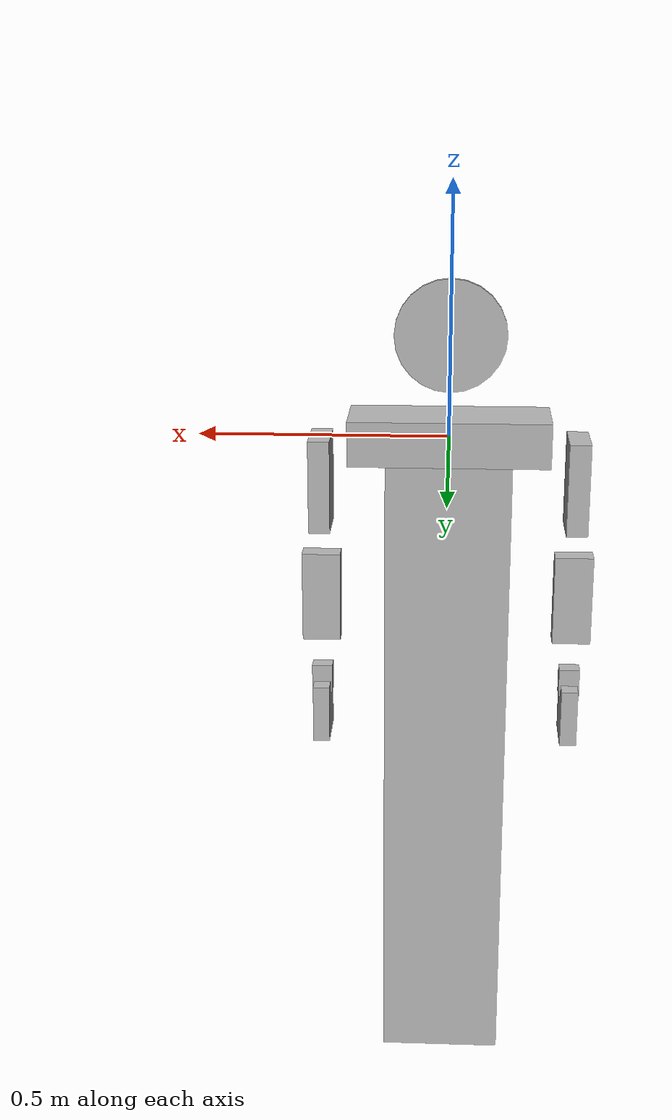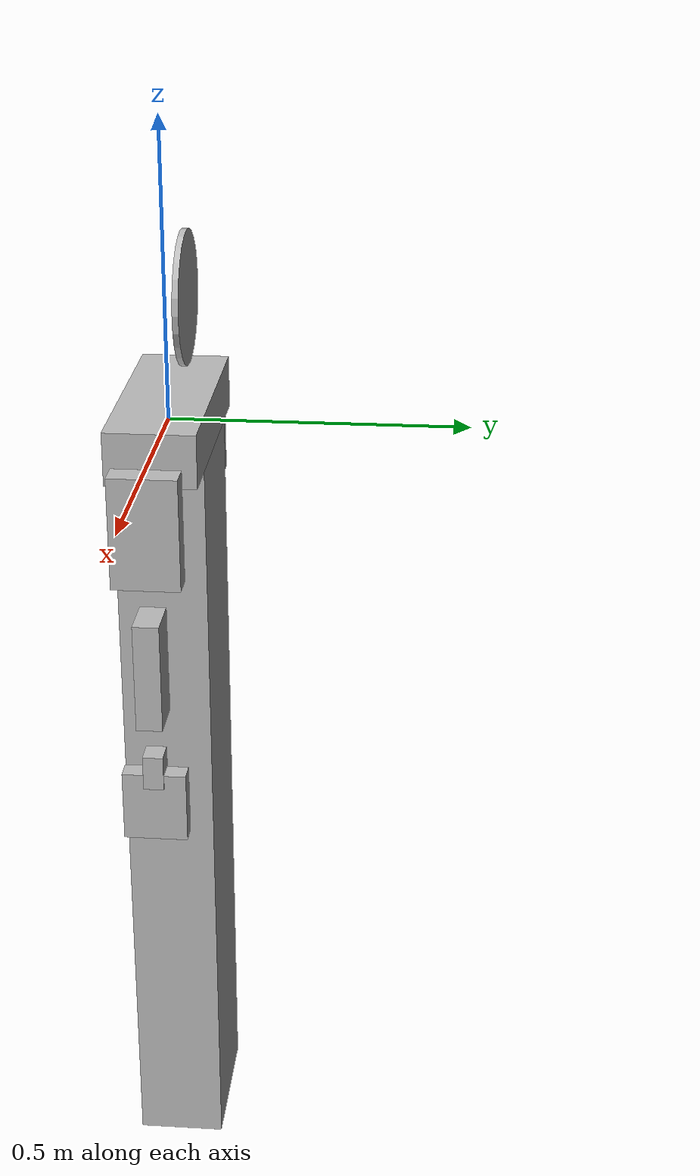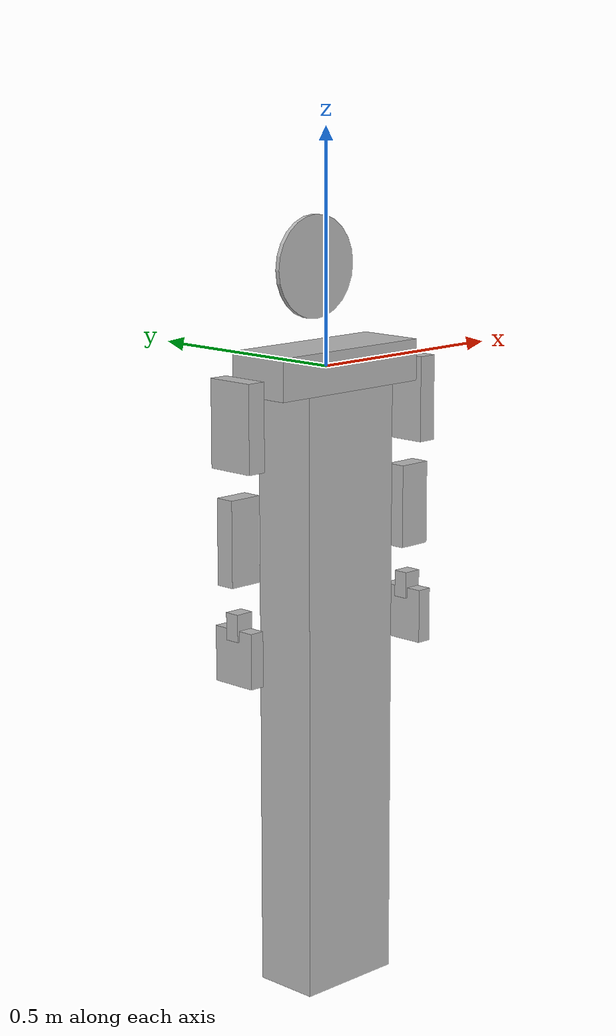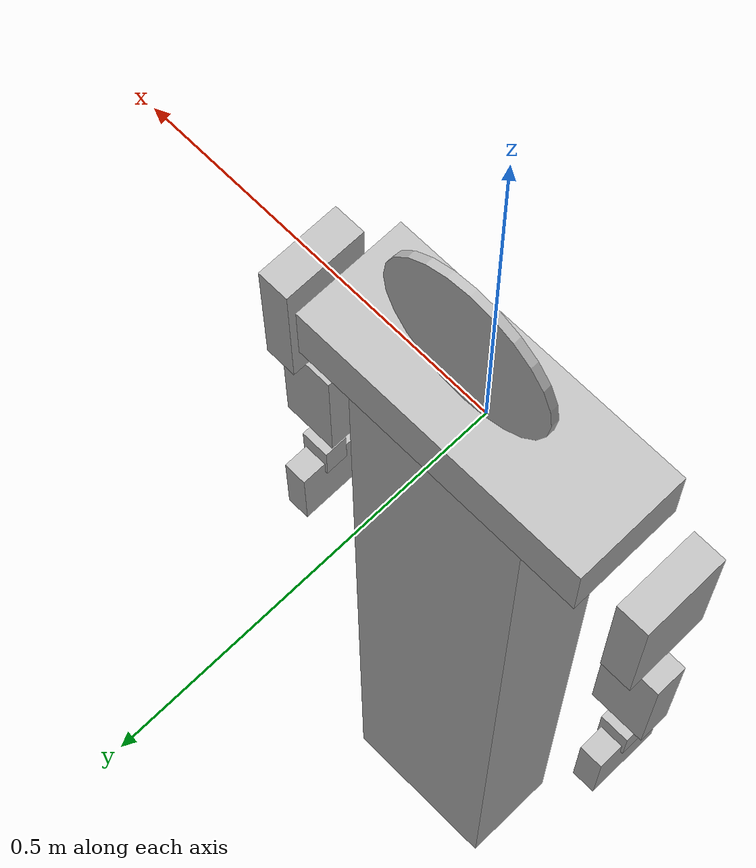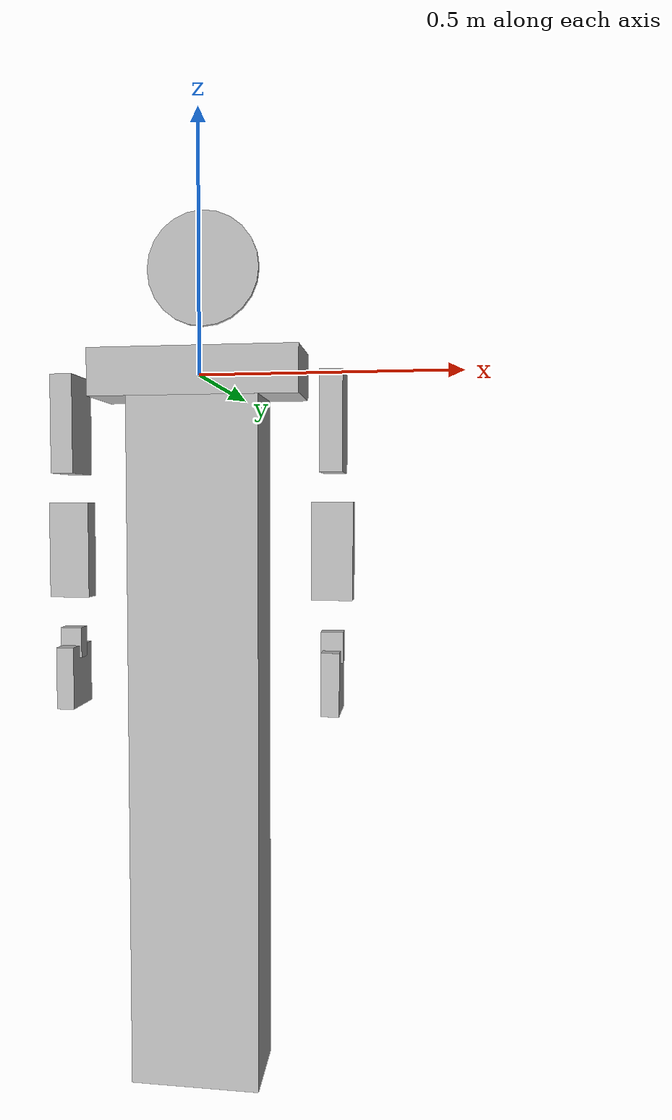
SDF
<?xml version="1.0"?>
<sdf version="1.5">
	<model name="aslr">
		<static>false</static>
		<plugin name="AslrRepl" filename="librepl_control.so" />

		<!-- links will collide with each other, though joined links won't -->
		<self_collide>true</self_collide>
		<pose>0 0 0 0 0 0</pose><!-- gazebo treats +Z as up -->

		<!-- fix base by joining it to 'world' -->
		<joint name="j_base" type="fixed"><parent>world</parent><child>l_base</child></joint>
		<link name="l_base">
			<pose>0 0 0 0 0 0</pose><gravity>false</gravity>
			<visual name="v_torso"><pose>0 0 -0.7083 0 0 0</pose>
				<geometry><box><size>0.25 0.15 1.3266</size></box></geometry>
			</visual>
			<collision name="c_torso"><pose>0 0 -0.7083 0 0 0</pose>
				<geometry><box><size>0.25 0.15 1.3266</size></box></geometry>
			</collision>
			<visual name="v_collar"><pose>0 0 0 0 0 0</pose>
				<geometry><box><size>0.40 0.15 0.09</size></box></geometry>
			</visual>
			<collision name="c_collar"><pose>0 0 0 0 0 0</pose>
				<geometry><box><size>0.40 0.15 0.09</size></box></geometry>
			</collision>
		</link>

		<joint name="j_neck" type="fixed"><parent>l_base</parent><child>l_head</child></joint>
		<link name="l_head">
			<pose>0 0.033315 0.2073 0 0 0</pose>
			<visual name="v_head"><pose>0 0 0 1.5707 0 0</pose>
				<geometry><cylinder><radius>0.11</radius><length>0.01</length></cylinder></geometry>
			</visual>
			<collision name="c_head"><pose>0 0 0 1.5707 0 0</pose>
				<geometry><cylinder><radius>0.11</radius><length>0.01</length></cylinder></geometry>
			</collision>
		</link>

		<joint name="j_Rshoulder_pitch" type="revolute">
			<parent>l_base</parent><child>l_Rshoulder</child>
			<axis><xyz>1 0 0</xyz><limit><!-- shoulder pitch -->
				<upper>2.3561944901923449288469825374596</upper>
				<lower>-0.78539816339744830961566084581988</lower>
				<effort>8.4</effort><!-- not geared - gears removed from design -->
			</limit></axis>
		</joint>
		<link name="l_Rshoulder">
			<pose>0.25717 0 0 0 0 0</pose>
			<inertial><mass>0.9043362</mass><pose>-0.019871708 0 0 0 0 0</pose></inertial>
		</link>
		<joint name="j_Rshoulder_roll" type="revolute">
			<parent>l_Rshoulder</parent><child>l_Rarm_upper</child>
			<axis><xyz>0 -1 0</xyz><limit><!-- shoulder roll -->
				<upper>2.6179938779914943653855361527329</upper>
				<lower>0</lower>
				<effort>16.8</effort>
			</limit></axis>
		</joint>

		<joint name="j_Lshoulder_pitch" type="revolute">
			<parent>l_base</parent><child>l_Lshoulder</child>
			<axis><xyz>1 0 0</xyz><limit><!-- shoulder pitch -->
				<upper>2.3561944901923449288469825374596</upper>
				<lower>-0.78539816339744830961566084581988</lower>
				<effort>8.4</effort><!-- not geared - gears removed from design -->
			</limit></axis>
		</joint>
		<link name="l_Lshoulder">
			<pose>-0.25717 0 0 0 0 0</pose>
			<inertial><mass>0.9043362</mass><pose>0.019871708 0 0 0 0 0</pose></inertial>
		</link>
		<joint name="j_Lshoulder_roll" type="revolute">
			<parent>l_Lshoulder</parent><child>l_Larm_upper</child>
			<axis><xyz>0 -1 0</xyz><limit><!-- shoulder roll -->
				<upper>0</upper>
				<lower>-2.6179938779914943653855361527329</lower>
				<effort>16.8</effort>
			</limit></axis>
		</joint>

		<link name="l_Rarm_upper">
			<pose>0.25717 0 0 0 0 0</pose>
			<inertial><mass>0.5236821</mass><pose>-0.0027099295 0 -0.1464027876 0 0 0</pose></inertial>
			<visual name="v_arm"><pose>0 0 -0.09401 0 0 0</pose>
				<geometry><box><size>0.04296 0.1125 0.18802</size></box></geometry>
			</visual>
			<collision name="c_arm"><pose>0 0 -0.09401 0 0 0</pose>
				<geometry><box><size>0.04296 0.1125 0.18802</size></box></geometry>
			</collision>
			<collision name="c_yaw"><pose>-0.00696 0 -0.178205 0 0 0</pose>
				<geometry><box><size>0.09003 0.1125 0.07963</size></box></geometry>
			</collision>
		</link>
		<link name="l_Larm_upper">
			<pose>-0.25717 0 0 0 0 0</pose>
			<inertial><mass>0.5236821</mass><pose>0.0027099295 0 -0.1464027876 0 0 0</pose></inertial>
			<visual name="v_arm"><pose>0 0 -0.09401 0 0 0</pose>
				<geometry><box><size>0.04296 0.1125 0.18802</size></box></geometry>
			</visual>
			<collision name="c_arm"><pose>0 0 -0.09401 0 0 0</pose>
				<geometry><box><size>0.04296 0.1125 0.18802</size></box></geometry>
			</collision>
			<collision name="c_yaw"><pose>0.00696 0 -0.178205 0 0 0</pose>
				<geometry><box><size>0.09003 0.1125 0.07963</size></box></geometry>
			</collision>
		</link>

		<joint name="j_Relbow" type="universal">
			<parent>l_Rarm_upper</parent><child>l_Rarm_lower</child>
			<axis><xyz>0 0 1</xyz><limit><!-- shoulder yaw -->
				<upper>2.3561944901923449288469825374596</upper>
				<lower>-0.78539816339744830961566084581988</lower>
				<effort>8.4</effort>
			</limit></axis>
			<axis2><xyz>1 0 0</xyz><limit><!-- elbow pitch -->
				<upper>2.2689280275926284500007979990352</upper>
				<lower>0</lower>
				<effort>8.4</effort>
			</limit></axis2>
		</joint>
		<joint name="j_Lelbow" type="universal">
			<parent>l_Larm_upper</parent><child>l_Larm_lower</child>
			<axis><xyz>0 0 1</xyz><limit><!-- shoulder yaw -->
				<upper>0.78539816339744830961566084581988</upper>
				<lower>-2.3561944901923449288469825374596</lower>
				<effort>8.4</effort>
			</limit></axis>
			<axis2><xyz>1 0 0</xyz><limit><!-- elbow pitch -->
				<upper>2.2689280275926284500007979990352</upper>
				<lower>0</lower>
				<effort>8.4</effort>
			</limit></axis2>
		</joint>

		<link name="l_Rarm_lower">
			<pose>0.25717 0 -0.24331 0 0 0</pose>
			<inertial><mass>0.3843216</mass><pose>0 0 -0.1524942453 0 0 0</pose></inertial>
			<visual name="v_arm"><pose>0 0 -0.092515 0 0 0</pose>
				<geometry><box><size>0.078 0.04332 0.18503</size></box></geometry>
			</visual>
			<collision name="c_arm"><pose>0 0 -0.092515 0 0 0</pose>
				<geometry><box><size>0.078 0.04332 0.18503</size></box></geometry>
			</collision>
			<collision name="c_roll"><pose>0 0.00401 -0.17852 0 0 0</pose>
				<geometry><box><size>0.078 0.08818 0.07302</size></box></geometry>
			</collision>
		</link>
		<link name="l_Larm_lower">
			<pose>-0.25717 0 -0.24331 0 0 0</pose>
			<inertial><mass>0.3843216</mass><pose>0 0 -0.1524942453 0 0 0</pose></inertial>
			<visual name="v_arm"><pose>0 0 -0.092515 0 0 0</pose>
				<geometry><box><size>0.078 0.04332 0.18503</size></box></geometry>
			</visual>
			<collision name="c_arm"><pose>0 0 -0.092515 0 0 0</pose>
				<geometry><box><size>0.078 0.04332 0.18503</size></box></geometry>
			</collision>
			<collision name="c_roll"><pose>0 0.00401 -0.17852 0 0 0</pose>
				<geometry><box><size>0.078 0.08818 0.07302</size></box></geometry>
			</collision>
		</link>

		<joint name="j_Rwrist" type="universal">
			<parent>l_Rarm_lower</parent><child>l_Rwrist_yaw</child>
			<axis><xyz>0 0 1</xyz><limit><!-- wrist roll -->
				<upper>1.5707963267948966192313216916398</upper>
				<lower>-1.5707963267948966192313216916398</lower>
				<effort>6</effort>
			</limit></axis>
			<axis2><xyz>0 -1 0</xyz><limit><!-- wrist pitch -->
				<upper>1.5707963267948966192313216916398</upper>
				<lower>-1.5707963267948966192313216916398</lower>
				<effort>2.5</effort>
			</limit></axis2>
		</joint>
		<link name="l_Rwrist_yaw">
			<pose>0.25717 0 -0.48883 0 0 0</pose>
			<inertial><mass>0.0312228</mass><!--CoG deemed negligible--></inertial>
			<visual name="v_wrist">
				<pose>0 0 -0.029535 0 0 0</pose>
				<geometry><box><size>0.042 0.034 0.05907</size></box></geometry>
			</visual>
			<collision name="c_wrist">
				<pose>0 0 -0.029535 0 0 0</pose>
				<geometry><box><size>0.042 0.034 0.05907</size></box></geometry>
			</collision>
		</link>
		<joint name="j_Rwrist_yaw" type="revolute">
			<parent>l_Rwrist_yaw</parent><child>l_Rhand</child>
			<axis><xyz>1 0 0</xyz><limit>
				<upper>1.5707963267948966192313216916398</upper>
				<lower>-1.5707963267948966192313216916398</lower>
				<effort>1.50042</effort>
			</limit></axis>
		</joint>

		<joint name="j_Lwrist" type="universal">
			<parent>l_Larm_lower</parent><child>l_Lwrist_yaw</child>
			<axis><xyz>0 0 1</xyz><limit><!-- wrist roll -->
				<upper>1.5707963267948966192313216916398</upper>
				<lower>-1.5707963267948966192313216916398</lower>
				<effort>6</effort>
			</limit></axis>
			<axis2><xyz>0 -1 0</xyz><limit><!-- wrist pitch -->
				<upper>1.5707963267948966192313216916398</upper>
				<lower>-1.5707963267948966192313216916398</lower>
				<effort>2.5</effort>
			</limit></axis2>
		</joint>
		<link name="l_Lwrist_yaw">
			<pose>-0.25717 0 -0.48883 0 0 0</pose>
			<inertial><mass>0.0312228</mass><!--CoG deemed negligible--></inertial>
			<visual name="v_wrist">
				<pose>0 0 -0.029535 0 0 0</pose>
				<geometry><box><size>0.042 0.034 0.05907</size></box></geometry>
			</visual>
			<collision name="c_wrist">
				<pose>0 0 -0.029535 0 0 0</pose>
				<geometry><box><size>0.042 0.034 0.05907</size></box></geometry>
			</collision>
		</link>
		<joint name="j_Lwrist_yaw" type="revolute">
			<parent>l_Lwrist_yaw</parent><child>l_Lhand</child>
			<axis><xyz>1 0 0</xyz><limit>
				<upper>1.5707963267948966192313216916398</upper>
				<lower>-1.5707963267948966192313216916398</lower>
				<effort>1.50042</effort>
			</limit></axis>
		</joint>

		<link name="l_Rhand">
			<pose>0.25717 0 -0.53493 0 0 0</pose>
			<inertial><mass>0.373697</mass><pose>-0.01873 -0.01484 -0.10708 0 0 0</pose></inertial>
			<visual name="v_palm"><pose>0 0 -0.04923 0 0 0</pose>
				<geometry><box><size>0.03404 0.10637 0.12</size></box></geometry>
			</visual>
			<collision name="c_palm"><pose>0 0 -0.04923 0 0 0</pose>
				<geometry><box><size>0.03404 0.10637 0.12</size></box></geometry>
			</collision>
			<collision name="c_thumb"><pose>-0.031345 0.03811 -0.085 0 0 0</pose>
				<geometry><cylinder><radius>0.06</radius><length>0.10</length></cylinder></geometry>
			</collision>
			<collision name="c_fingers"><pose>-0.0275 0.005 -0.15 0 0 0</pose>
				<geometry><box><size>0.085 0.11 0.20</size></box></geometry>
			</collision>
		</link>
		<link name="l_Lhand">
			<pose>-0.25717 0 -0.53493 0 0 0</pose>
			<inertial><mass>0.373697</mass><pose>0.01873 -0.01484 -0.10708 0 0 0</pose></inertial>
			<visual name="v_palm"><pose>0 0 -0.04923 0 0 0</pose>
				<geometry><box><size>0.03404 0.10637 0.12</size></box></geometry>
			</visual>
			<collision name="c_palm"><pose>0 0 -0.04923 0 0 0</pose>
				<geometry><box><size>0.03404 0.10637 0.12</size></box></geometry>
			</collision>
			<collision name="c_thumb"><pose>0.031345 0.03811 -0.085 0 0 0</pose>
				<geometry><cylinder><radius>0.06</radius><length>0.10</length></cylinder></geometry>
			</collision>
			<collision name="c_fingers"><pose>0.0275 0.005 -0.15 0 0 0</pose>
				<geometry><box><size>0.085 0.11 0.20</size></box></geometry>
			</collision>
		</link>
	</model>
</sdf>
